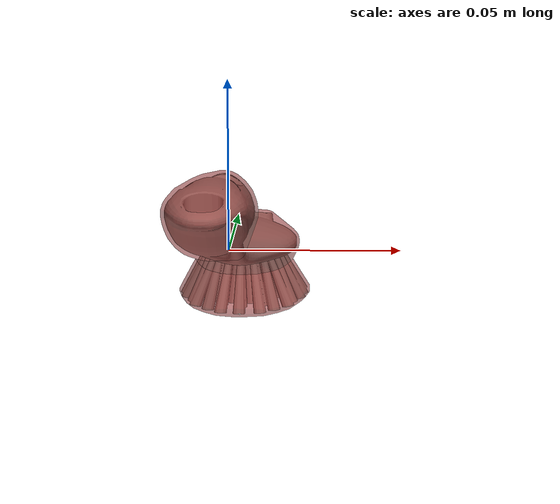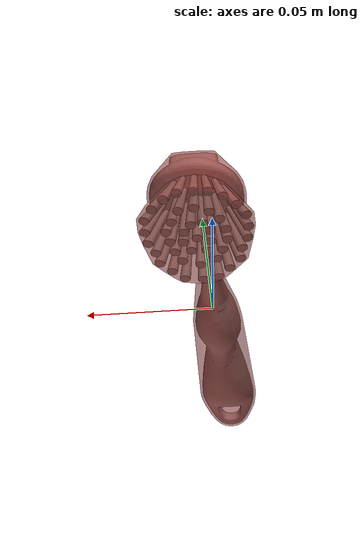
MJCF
<mujoco model="model">
  <option timestep="0.002" gravity="0.0 0.0 -9.81"/>
  <compiler angle="radian"/>
  <asset>
    <mesh file="visual/DishBrush008.obj" name="DishBrush008_vis"/>
    <texture file="visual/T_BC001.png" name="DishBrush008_material" type="2d"/>
    <material name="DishBrush008_material" rgba="1 1 1 1.0" texture="DishBrush008_material" shininess="0.5" specular="0.3103448502657381"/>
    <mesh file="collision/collision_mesh_collision_0.obj" name="DishBrush008_collision_mesh_0"/>
    <mesh file="collision/collision_mesh_collision_1.obj" name="DishBrush008_collision_mesh_1"/>
    <mesh file="collision/collision_mesh_collision_2.obj" name="DishBrush008_collision_mesh_2"/>
  </asset>
  <default>
    <default class="visual">
      <geom conaffinity="0" contype="0" group="1" type="mesh"/>
    </default>
    <default class="collision">
      <geom group="0" rgba="0.5 0 0 0.5" density="1.0" solref="0.004 1" solimp="0.998 0.998 0.001"/>
    </default>
    <default class="spawn">
      <geom group="0" rgba="1 1 1 0.5" contype="0" conaffinity="0"/>
      <site group="0" rgba="1 1 1 0.5"/>
    </default>
    <default class="region">
      <geom group="1" conaffinity="0" contype="0" rgba="0 1 0 0" mass="0"/>
    </default>
  </default>
  <worldbody>
    <body>
      <body name="object">
        <geom mesh="DishBrush008_vis" type="mesh" solimp="0.998 0.998 0.001" solref="0.001 1" friction="0.95 0.3 0.1" class="visual" material="DishBrush008_material"/>
        <geom class="region" name="reg_bbox" type="box" pos="1.500000000077828e-08 -0.0002566349999999981 8.774999999999061e-06" size="0.022238355 0.10104669499999999 0.035159405000000005"/>
        <geom mesh="DishBrush008_collision_mesh_0" type="mesh" class="collision"/>
        <geom mesh="DishBrush008_collision_mesh_1" type="mesh" class="collision"/>
        <geom mesh="DishBrush008_collision_mesh_2" type="mesh" class="collision"/>
      </body>
    </body>
  </worldbody>
  <actuator/>
</mujoco>
